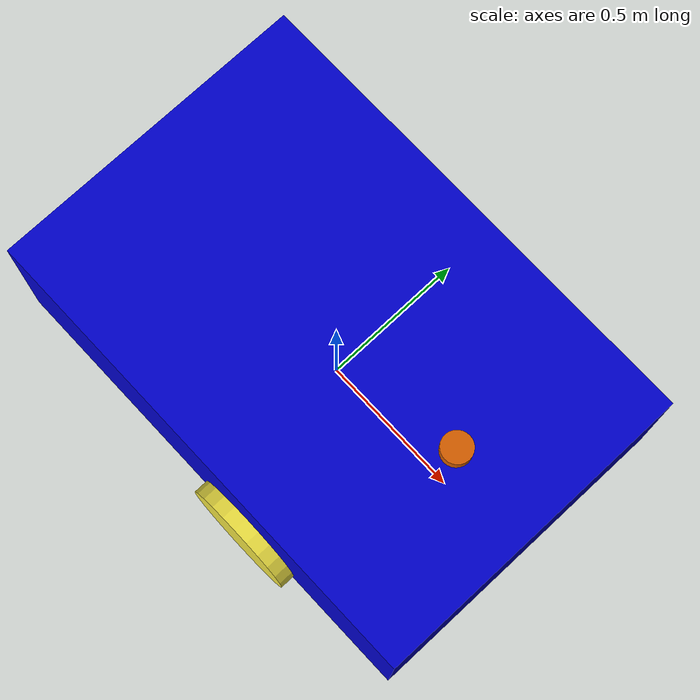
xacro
<?xml version="1.0"?>
<robot xmlns:xacro="http://www.ros.org/wiki/xacro" name="teb_robot">

  <!-- ================== GEOMETRİ VE KİNEMATİK ================== -->

  <link name="base_footprint"/>

  <joint name="base_joint" type="fixed">
    <parent link="base_footprint"/>
    <child link="base_link"/>
    <origin xyz="0 0 0.275" rpy="0 0 3.14159265358979"/>
  </joint>

  <!-- Şasi (Boy: 1.65m, Genişlik: 1.1m, Yükseklik: 0.55m) -->
  <link name="base_link">
    <visual>
      <geometry><box size="1.65 1.1 0.55"/></geometry>
      <material name="blue"><color rgba="0 0 0.8 1"/></material>
    </visual>
    <collision>
      <geometry><box size="1.65 1.1 0.55"/></geometry>
    </collision>
    <inertial>
      <mass value="35.0"/>
      <inertia ixx="4.5" ixy="0" ixz="0" iyy="8.0" iyz="0" izz="11.0"/>
    </inertial>
  </link>

  <!-- Sağ Tekerlek -->
  <joint name="right_wheel_joint" type="continuous">
    <parent link="base_link"/>
    <child link="right_wheel"/>
    <origin xyz="-0.2 -0.575 -0.2" rpy="-1.5708 0 0"/>
    <axis xyz="0 0 1"/>
  </joint>
  <link name="right_wheel">
    <visual><geometry><cylinder radius="0.2" length="0.05"/></geometry></visual>
    <collision><geometry><cylinder radius="0.2" length="0.05"/></geometry></collision>
    <inertial><mass value="1.5"/><inertia ixx="0.004" ixy="0" ixz="0" iyy="0.004" iyz="0" izz="0.007"/></inertial>
  </link>

  <!-- Sol Tekerlek -->
  <joint name="left_wheel_joint" type="continuous">
    <parent link="base_link"/>
    <child link="left_wheel"/>
    <origin xyz="-0.2 0.575 -0.2" rpy="-1.5708 0 0"/>
    <axis xyz="0 0 1"/>
  </joint>
  <link name="left_wheel">
    <visual><geometry><cylinder radius="0.2" length="0.05"/></geometry></visual>
    <collision><geometry><cylinder radius="0.2" length="0.05"/></geometry></collision>
    <inertial><mass value="1.5"/><inertia ixx="0.004" ixy="0" ixz="0" iyy="0.004" iyz="0" izz="0.007"/></inertial>
  </link>

  <!-- Sarhoş Tekerlek (Caster) - Ön Kısma Taşındı -->
  <joint name="caster_joint" type="fixed">
    <parent link="base_link"/>
    <child link="caster_wheel"/>
    <origin xyz="-0.6 0 -0.30" rpy="0 0 0"/>
  </joint>
  <link name="caster_wheel">
    <visual><geometry><sphere radius="0.1"/></geometry></visual>
    <collision><geometry><sphere radius="0.1"/></geometry></collision>
    <inertial><mass value="0.8"/><inertia ixx="0.0008" ixy="0" ixz="0" iyy="0.0008" iyz="0" izz="0.0008"/></inertial>
  </link>

  <!-- ================== SENSÖRLER (LIDAR & IMU) ================== -->

  <!-- LIDAR Link - Şasi Üzerine Konumlandırıldı -->
  <joint name="lidar_joint" type="fixed">
    <parent link="base_link"/>
    <child link="lidar_link"/>
    <origin xyz="-0.5 0 0.30" rpy="0 0 0"/>
  </joint>
  <link name="lidar_link">
    <visual><geometry><cylinder radius="0.05" length="0.05"/></geometry></visual>
  </link>

  <!-- IMU Link - Şasi Merkezine Konumlandırıldı -->
  <joint name="imu_joint" type="fixed">
    <parent link="base_link"/>
    <child link="imu_link"/>
    <!-- yaw=pi: IMU'nun fiziksel "ileri" ekseni, lidar/caster ile ayni yonde
         duzeltilen gercek arac onu ile eslesmesi icin 180 derece dondurulduu -->
    <origin xyz="0 0 0.2" rpy="0 0 3.14159265358979"/>
  </joint>
  <link name="imu_link"/>

  <!-- ================== GAZEBO PLUGINS (ROS 2) ================== -->

  <!-- Diferansiyel Sürüş ve Odometri -->
  <gazebo>
    <plugin name="diff_drive" filename="libgazebo_ros_diff_drive.so">
      <update_rate>30</update_rate>
      <left_joint>left_wheel_joint</left_joint>
      <right_joint>right_wheel_joint</right_joint>
      <wheel_separation>1.15</wheel_separation>
      <wheel_diameter>0.2</wheel_diameter>
      <max_wheel_torque>200</max_wheel_torque>
      <max_wheel_acceleration>2.0</max_wheel_acceleration>
      <command_topic>cmd_vel</command_topic>
      <publish_odom>true</publish_odom>
      <publish_odom_tf>true</publish_odom_tf>
      <publish_wheel_tf>false</publish_wheel_tf>
      <odometry_topic>odom</odometry_topic>
      <odometry_frame>odom</odometry_frame>
      <robot_base_frame>base_footprint</robot_base_frame>
    </plugin>
  </gazebo>

  <!-- 2D LIDAR Sensörü -->
  <gazebo reference="lidar_link">
    <sensor type="ray" name="head_hokuyo_sensor">
      <pose>0 0 0 0 0 0</pose>
      <visualize>true</visualize>
      <update_rate>10</update_rate>
      <ray>
        <scan>
          <horizontal>
            <samples>360</samples>
            <resolution>1</resolution>
            <min_angle>-3.14159</min_angle>
            <max_angle>3.14159</max_angle>
          </horizontal>
        </scan>
        <range>
          <min>0.15</min>
          <max>10.0</max>
          <resolution>0.01</resolution>
        </range>
      </ray>
      <plugin name="gazebo_ros_lidar" filename="libgazebo_ros_ray_sensor.so">
        <ros><remapping>~/out:=scan</remapping></ros>
        <output_type>sensor_msgs/LaserScan</output_type>
        <frame_name>lidar_link</frame_name>
      </plugin>
    </sensor>
  </gazebo>

  <!-- IMU Sensörü -->
  <gazebo reference="imu_link">
    <sensor type="imu" name="imu_sensor">
      <always_on>true</always_on>
      <update_rate>50</update_rate>
      <plugin name="gazebo_ros_imu" filename="libgazebo_ros_imu_sensor.so">
        <ros><remapping>~/out:=imu/data</remapping></ros>
        <initial_orientation_as_reference>false</initial_orientation_as_reference>
        <frame_name>imu_link</frame_name>
      </plugin>
    </sensor>
  </gazebo>

  <!-- Sürtünme Ayarları -->
  <gazebo reference="caster_wheel">
    <mu1>0.001</mu1>
    <mu2>0.001</mu2>
  </gazebo>
</robot>
